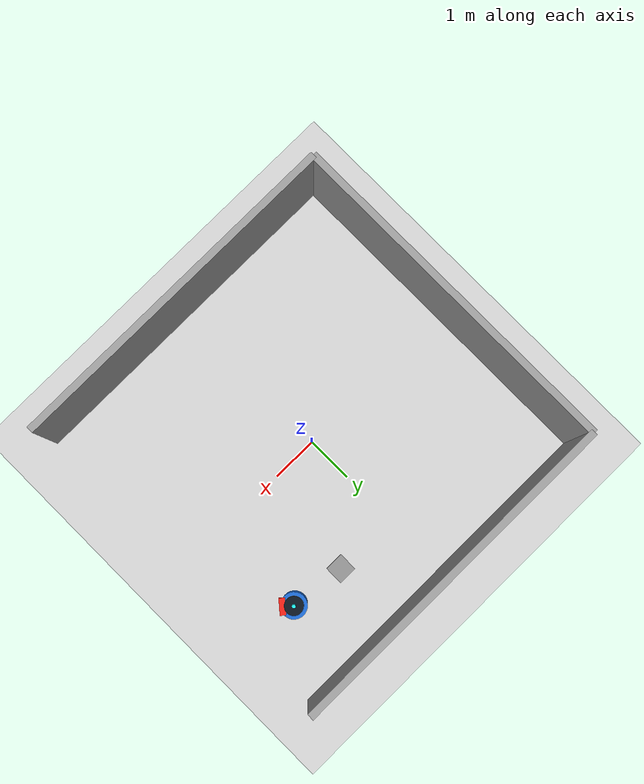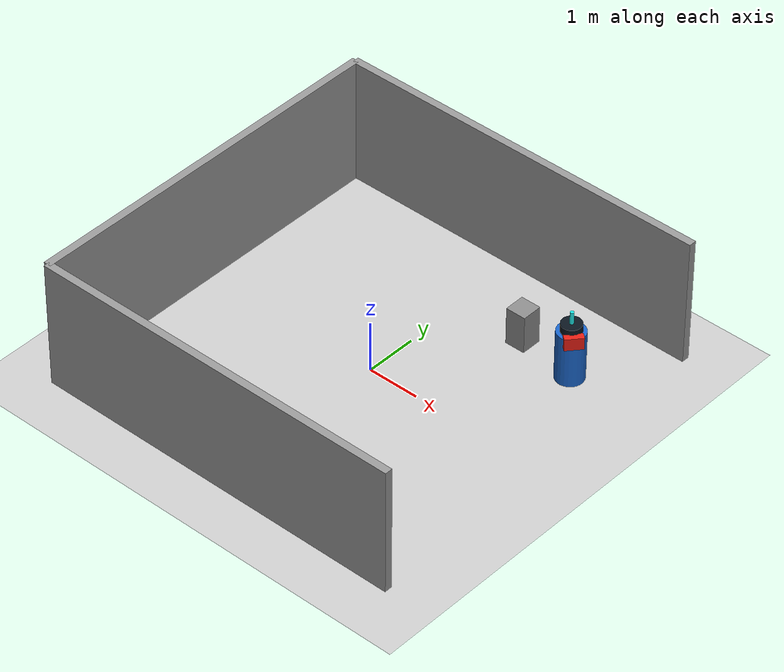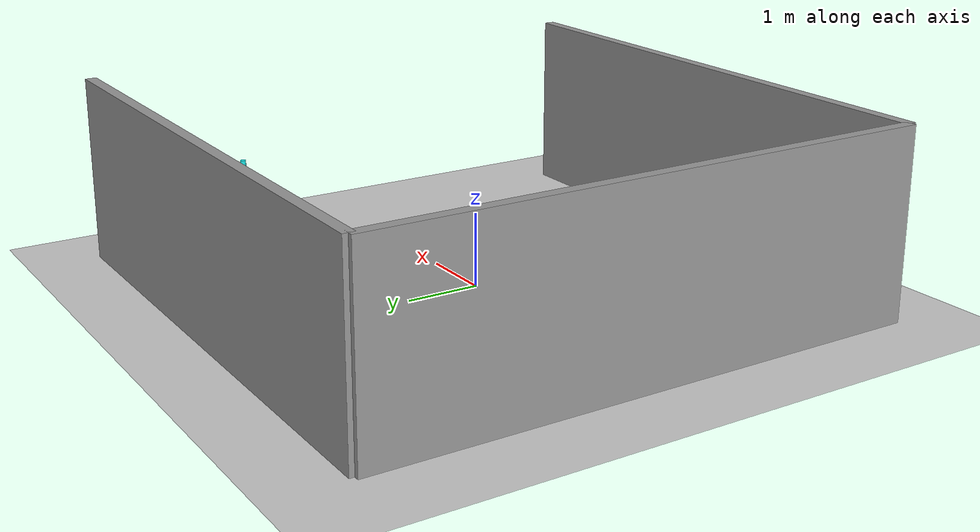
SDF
<?xml version='1.0'?>
<sdf version='1.7'>
  <world name='default'>
    <gui>
      <camera name='user_camera'>
        <pose>-0.03249999995551822 4.448143435547243e-11 18.08203134571604 1.3686662914125236e-09 1.5707963267948966 0</pose>
        <view_controller>orbit</view_controller>
        <projection_type>perspective</projection_type>
      </camera>
    </gui>
    <plugin name="socnav_plugin" filename="libSocNavPlugin.so">
      <robot_name>robot</robot_name>
      <trajectory_file>/home/hunav_gz_classic_ws/SocNav3_trajectories/src6/000003902.json</trajectory_file>
      <human_slots>0</human_slots>
      <goal_angle_mesh>
        <angle_threshold>1.12217331731</angle_threshold>
        <uri>/home/hunav_gz_classic_ws/src/socnav_gazebo_reproducer/meshes/000003902_goal_angle_00.stl</uri>
      </goal_angle_mesh>

    </plugin>
    <light name='sun' type='directional'>
      <cast_shadows>1</cast_shadows>
      <pose>0 0 10 0 -0 0</pose>
      <diffuse>0.8 0.8 0.8 1</diffuse>
      <specular>0.2 0.2 0.2 1</specular>
      <attenuation>
        <range>1000</range>
        <constant>0.9</constant>
        <linear>0.01</linear>
        <quadratic>0.001</quadratic>
      </attenuation>
      <direction>-0.5 0.1 -0.9</direction>
      <spot>
        <inner_angle>0</inner_angle>
        <outer_angle>0</outer_angle>
        <falloff>0</falloff>
      </spot>
    </light>
    <model name='ground_plane'>
      <static>1</static>
      <link name='link'>
        <collision name='collision'>
          <geometry>
            <plane>
              <normal>0 0 1</normal>
              <size>100 100</size>
            </plane>
          </geometry>
          <surface>
            <friction>
              <ode>
                <mu>100</mu>
                <mu2>50</mu2>
              </ode>
              <torsional>
                <ode/>
              </torsional>
            </friction>
            <contact>
              <ode/>
            </contact>
            <bounce/>
          </surface>
          <max_contacts>10</max_contacts>
        </collision>
        <visual name='visual'>
          <cast_shadows>0</cast_shadows>
          <geometry>
            <plane>
              <normal>0 0 1</normal>
              <size>100 100</size>
            </plane>
          </geometry>
          <material>
            <script>
              <uri>file://media/materials/scripts/kitchen.material</uri>
              <name>Kitchen/CounterTop_H</name>
            </script>
          </material>
        </visual>
        <self_collide>0</self_collide>
        <enable_wind>0</enable_wind>
        <kinematic>0</kinematic>
      </link>
    </model>
    <gravity>0 0 -9.8</gravity>
    <magnetic_field>6e-06 2.3e-05 -4.2e-05</magnetic_field>
    <atmosphere type='adiabatic'/>
    <physics type='ode'>
      <max_step_size>0.001</max_step_size>
      <real_time_factor>1</real_time_factor>
      <real_time_update_rate>1000</real_time_update_rate>
    </physics>
    <scene>
      <ambient>0.4 0.4 0.4 1</ambient>
      <background>0.7 0.7 0.7 1</background>
      <shadows>1</shadows>
    </scene>
    <audio>
      <device>default</device>
    </audio>
    <wind/>
    <spherical_coordinates>
      <surface_model>EARTH_WGS84</surface_model>
      <latitude_deg>0</latitude_deg>
      <longitude_deg>0</longitude_deg>
      <elevation>0</elevation>
      <heading_deg>0</heading_deg>
    </spherical_coordinates>
    <model name='robot'>
      <pose>2.555701236687901 2.080176423427043 0.5 0 0 -0.7005847238653071</pose>
      <link name='link'>
        <collision name='collision'>
          <geometry>
            <cylinder>
              <radius>0.26725345541330087</radius>
              <length>1.0</length>
            </cylinder>
          </geometry>
        </collision>
        <visual name='visual'>
          <geometry>
            <cylinder>
              <radius>0.26725345541330087</radius>
              <length>1.0</length>
            </cylinder>
          </geometry>
          <material>
            <ambient>0.1 0.4 0.8 1</ambient>
            <diffuse>0.1 0.4 0.8 1</diffuse>
          </material>
        </visual>
        <visual name='robot_top'>
          <pose>0 0 0.58 0 0 0</pose>
          <geometry><cylinder><radius>0.19242248789757663</radius><length>0.16</length></cylinder></geometry>
          <material><ambient>0.04 0.08 0.12 1</ambient><diffuse>0.04 0.08 0.12 1</diffuse></material>
        </visual>
        <visual name='robot_front'>
          <pose>0.22449290254717272 0 0.44 0 0 0</pose>
          <geometry><box><size>0.12828165859838442 0.34208442292902513 0.24</size></box></geometry>
          <material><ambient>0.9 0.12 0.08 1</ambient><diffuse>0.9 0.12 0.08 1</diffuse></material>
        </visual>
        <visual name='robot_sensor'>
          <pose>0 0 0.78 0 0 0</pose>
          <geometry><cylinder><radius>0.03741548375786213</radius><length>0.24</length></cylinder></geometry>
          <material><ambient>0.1 0.9 0.9 1</ambient><diffuse>0.1 0.9 0.9 1</diffuse></material>
        </visual>
      </link>
    </model>
    <model name="static_object_0">
      <static>true</static>
      <pose>1.402365250587489 2.2220488397839286 0.375 0 0 0</pose>
      <link name="link">
        <collision name="collision">
          <geometry>
            <box>
              <size>0.396021297107465 0.396021297107465 0.75</size>
            </box>
          </geometry>
        </collision>
        <visual name="visual">

          <geometry>
            <box>
              <size>0.396021297107465 0.396021297107465 0.75</size>
            </box>
          </geometry>
          <material>
            <ambient>0.55 0.55 0.55 1</ambient>
            <diffuse>0.55 0.55 0.55 1</diffuse>
          </material>
        </visual>
      </link>
    </model>
    <model name='simple_world_test'>
      <pose>0 0 0 0 -0 0</pose>
      <link name='Wall_0'>
        <collision name='Wall_0_Collision'>
          <geometry>
            <box>
              <size>7.420250944344907 0.15 2.5</size>
            </box>
          </geometry>
          <pose>0 0 1.25 0 -0 0</pose>
          <max_contacts>10</max_contacts>
          <surface>
            <contact>
              <ode/>
            </contact>
            <bounce/>
            <friction>
              <torsional>
                <ode/>
              </torsional>
              <ode/>
            </friction>
          </surface>
        </collision>
        <visual name='Wall_0_Visual'>
          <pose>0 0 1.25 0 -0 0</pose>
          <geometry>
            <box>
              <size>7.420250944344907 0.15 2.5</size>
            </box>
          </geometry>
          <material>
            <script>
              <uri>file://media/materials/scripts/gazebo.material</uri>
              <name>Gazebo/Grey</name>
            </script>
            <ambient>1 1 1 1</ambient>
          </material>
          <meta>
            <layer>0</layer>
          </meta>
        </visual>
        <pose>0.0 -3.700125472172454 0 0 -0 -3.141592653589793</pose>
        <self_collide>0</self_collide>
        <enable_wind>0</enable_wind>
        <kinematic>0</kinematic>
      </link>
      <link name='Wall_1'>
        <collision name='Wall_1_Collision'>
          <geometry>
            <box>
              <size>7.420250944344907 0.15 2.5</size>
            </box>
          </geometry>
          <pose>0 0 1.25 0 -0 0</pose>
          <max_contacts>10</max_contacts>
          <surface>
            <contact>
              <ode/>
            </contact>
            <bounce/>
            <friction>
              <torsional>
                <ode/>
              </torsional>
              <ode/>
            </friction>
          </surface>
        </collision>
        <visual name='Wall_1_Visual'>
          <pose>0 0 1.25 0 -0 0</pose>
          <geometry>
            <box>
              <size>7.420250944344907 0.15 2.5</size>
            </box>
          </geometry>
          <material>
            <script>
              <uri>file://media/materials/scripts/gazebo.material</uri>
              <name>Gazebo/Grey</name>
            </script>
            <ambient>1 1 1 1</ambient>
          </material>
          <meta>
            <layer>0</layer>
          </meta>
        </visual>
        <pose>-3.700125472172454 0.0 0 0 -0 1.5707963267948966</pose>
        <self_collide>0</self_collide>
        <enable_wind>0</enable_wind>
        <kinematic>0</kinematic>
      </link>
      <link name='Wall_2'>
        <collision name='Wall_2_Collision'>
          <geometry>
            <box>
              <size>7.420250944344907 0.15 2.5</size>
            </box>
          </geometry>
          <pose>0 0 1.25 0 -0 0</pose>
          <max_contacts>10</max_contacts>
          <surface>
            <contact>
              <ode/>
            </contact>
            <bounce/>
            <friction>
              <torsional>
                <ode/>
              </torsional>
              <ode/>
            </friction>
          </surface>
        </collision>
        <visual name='Wall_2_Visual'>
          <pose>0 0 1.25 0 -0 0</pose>
          <geometry>
            <box>
              <size>7.420250944344907 0.15 2.5</size>
            </box>
          </geometry>
          <material>
            <script>
              <uri>file://media/materials/scripts/gazebo.material</uri>
              <name>Gazebo/Grey</name>
            </script>
            <ambient>1 1 1 1</ambient>
          </material>
          <meta>
            <layer>0</layer>
          </meta>
        </visual>
        <pose>0.0 3.700125472172454 0 0 -0 0.0</pose>
        <self_collide>0</self_collide>
        <enable_wind>0</enable_wind>
        <kinematic>0</kinematic>
      </link>
      <static>1</static>
    </model>
  </world>
</sdf>
